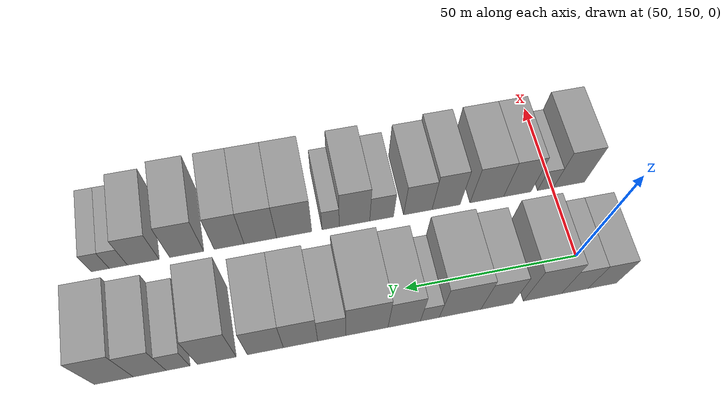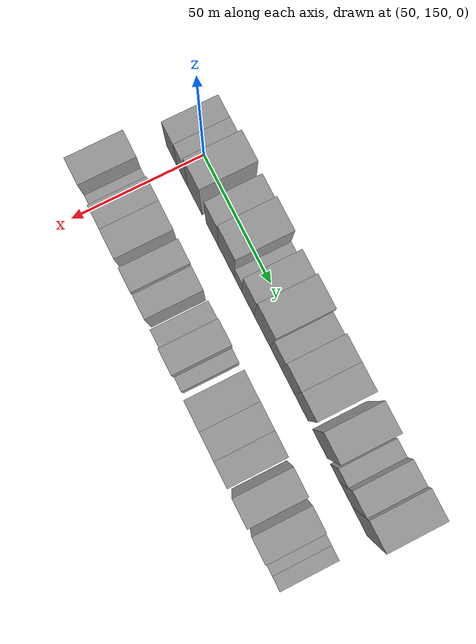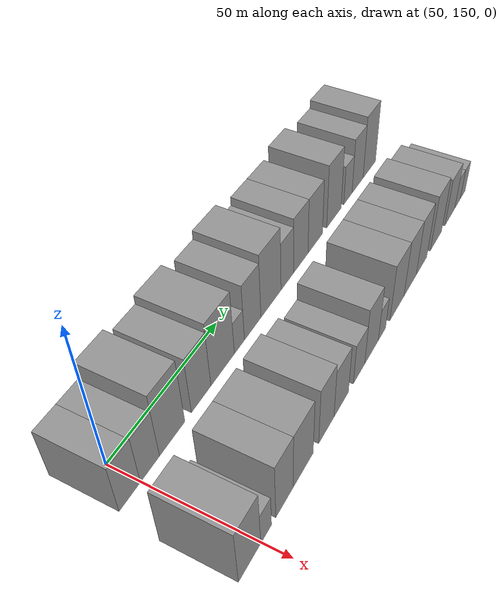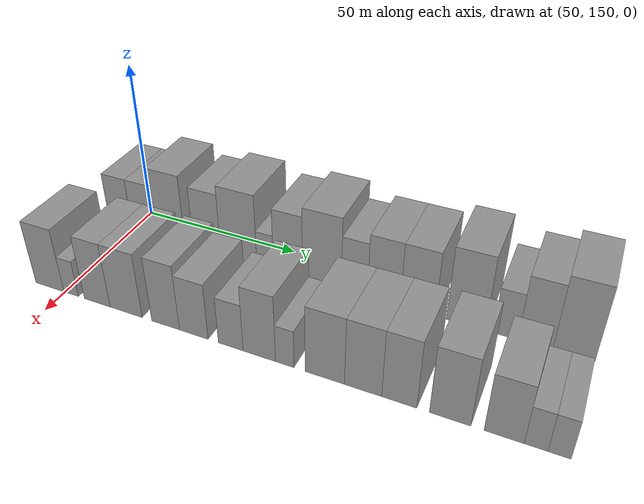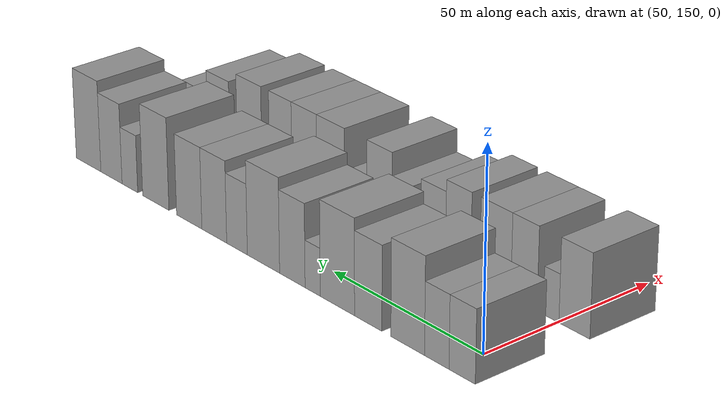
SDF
<sdf version="1.6">
 <world name="default">
  <model name="building_46">
   <static>1</static>
   <pose>50.0000 145.7142 0 0.000000 0.000000 0.000000</pose>
   <link name="link">
    <pose>0 0 9.00 0 0 0</pose>
    <collision name="collision"><geometry><box><size>20.0000 8.2881 18.0000</size></box></geometry></collision>
    <visual name="visual">
     <cast_shadows>0</cast_shadows>
     <geometry><box><size>20.0000 8.2881 18.0000</size></box></geometry>
     <material>
      <script>
       <uri>model://grey_wall/materials/scripts</uri>
       <uri>model://grey_wall/materials/textures</uri>
       <name>vrc/grey_wall</name>
      </script>
     </material>
    </visual>
   </link>
  </model>
  <model name="building_47">
   <static>1</static>
   <pose>50.0000 153.7815 0 0.000000 0.000000 0.000000</pose>
   <link name="link">
    <pose>0 0 9.00 0 0 0</pose>
    <collision name="collision"><geometry><box><size>20.0000 7.8466 18.0000</size></box></geometry></collision>
    <visual name="visual">
     <cast_shadows>0</cast_shadows>
     <geometry><box><size>20.0000 7.8466 18.0000</size></box></geometry>
     <material>
      <script>
       <uri>model://grey_wall/materials/scripts</uri>
       <uri>model://grey_wall/materials/textures</uri>
       <name>vrc/grey_wall</name>
      </script>
     </material>
    </visual>
   </link>
  </model>
  <model name="building_48">
   <static>1</static>
   <pose>50.0000 163.2209 0 0.000000 0.000000 0.000000</pose>
   <link name="link">
    <pose>0 0 12.00 0 0 0</pose>
    <collision name="collision"><geometry><box><size>20.0000 11.0322 24.0000</size></box></geometry></collision>
    <visual name="visual">
     <cast_shadows>0</cast_shadows>
     <geometry><box><size>20.0000 11.0322 24.0000</size></box></geometry>
     <material>
      <script>
       <uri>model://grey_wall/materials/scripts</uri>
       <uri>model://grey_wall/materials/textures</uri>
       <name>vrc/grey_wall</name>
      </script>
     </material>
    </visual>
   </link>
  </model>
  <model name="building_49">
   <static>1</static>
   <pose>50.0000 176.3521 0 0.000000 0.000000 0.000000</pose>
   <link name="link">
    <pose>0 0 10.50 0 0 0</pose>
    <collision name="collision"><geometry><box><size>20.0000 9.2301 21.0000</size></box></geometry></collision>
    <visual name="visual">
     <cast_shadows>0</cast_shadows>
     <geometry><box><size>20.0000 9.2301 21.0000</size></box></geometry>
     <material>
      <script>
       <uri>model://grey_wall/materials/scripts</uri>
       <uri>model://grey_wall/materials/textures</uri>
       <name>vrc/grey_wall</name>
      </script>
     </material>
    </visual>
   </link>
  </model>
  <model name="building_50">
   <static>1</static>
   <pose>50.0000 186.8899 0 0.000000 0.000000 0.000000</pose>
   <link name="link">
    <pose>0 0 12.00 0 0 0</pose>
    <collision name="collision"><geometry><box><size>20.0000 11.8455 24.0000</size></box></geometry></collision>
    <visual name="visual">
     <cast_shadows>0</cast_shadows>
     <geometry><box><size>20.0000 11.8455 24.0000</size></box></geometry>
     <material>
      <script>
       <uri>model://grey_wall/materials/scripts</uri>
       <uri>model://grey_wall/materials/textures</uri>
       <name>vrc/grey_wall</name>
      </script>
     </material>
    </visual>
   </link>
  </model>
  <model name="building_51">
   <static>1</static>
   <pose>50.0000 195.4780 0 0.000000 0.000000 0.000000</pose>
   <link name="link">
    <pose>0 0 6.00 0 0 0</pose>
    <collision name="collision"><geometry><box><size>20.0000 5.3307 12.0000</size></box></geometry></collision>
    <visual name="visual">
     <cast_shadows>0</cast_shadows>
     <geometry><box><size>20.0000 5.3307 12.0000</size></box></geometry>
     <material>
      <script>
       <uri>model://grey_wall/materials/scripts</uri>
       <uri>model://grey_wall/materials/textures</uri>
       <name>vrc/grey_wall</name>
      </script>
     </material>
    </visual>
   </link>
  </model>
  <model name="building_52">
   <static>1</static>
   <pose>50.0000 202.6930 0 0.000000 0.000000 0.000000</pose>
   <link name="link">
    <pose>0 0 10.50 0 0 0</pose>
    <collision name="collision"><geometry><box><size>20.0000 9.0993 21.0000</size></box></geometry></collision>
    <visual name="visual">
     <cast_shadows>0</cast_shadows>
     <geometry><box><size>20.0000 9.0993 21.0000</size></box></geometry>
     <material>
      <script>
       <uri>model://grey_wall/materials/scripts</uri>
       <uri>model://grey_wall/materials/textures</uri>
       <name>vrc/grey_wall</name>
      </script>
     </material>
    </visual>
   </link>
  </model>
  <model name="building_53">
   <static>1</static>
   <pose>50.0000 213.1366 0 0.000000 0.000000 0.000000</pose>
   <link name="link">
    <pose>0 0 12.00 0 0 0</pose>
    <collision name="collision"><geometry><box><size>20.0000 11.7880 24.0000</size></box></geometry></collision>
    <visual name="visual">
     <cast_shadows>0</cast_shadows>
     <geometry><box><size>20.0000 11.7880 24.0000</size></box></geometry>
     <material>
      <script>
       <uri>model://grey_wall/materials/scripts</uri>
       <uri>model://grey_wall/materials/textures</uri>
       <name>vrc/grey_wall</name>
      </script>
     </material>
    </visual>
   </link>
  </model>
  <model name="building_54">
   <static>1</static>
   <pose>50.0000 222.8815 0 0.000000 0.000000 0.000000</pose>
   <link name="link">
    <pose>0 0 9.00 0 0 0</pose>
    <collision name="collision"><geometry><box><size>20.0000 7.7017 18.0000</size></box></geometry></collision>
    <visual name="visual">
     <cast_shadows>0</cast_shadows>
     <geometry><box><size>20.0000 7.7017 18.0000</size></box></geometry>
     <material>
      <script>
       <uri>model://grey_wall/materials/scripts</uri>
       <uri>model://grey_wall/materials/textures</uri>
       <name>vrc/grey_wall</name>
      </script>
     </material>
    </visual>
   </link>
  </model>
  <model name="building_55">
   <static>1</static>
   <pose>50.0000 231.4436 0 0.000000 0.000000 0.000000</pose>
   <link name="link">
    <pose>0 0 10.50 0 0 0</pose>
    <collision name="collision"><geometry><box><size>20.0000 9.4225 21.0000</size></box></geometry></collision>
    <visual name="visual">
     <cast_shadows>0</cast_shadows>
     <geometry><box><size>20.0000 9.4225 21.0000</size></box></geometry>
     <material>
      <script>
       <uri>model://grey_wall/materials/scripts</uri>
       <uri>model://grey_wall/materials/textures</uri>
       <name>vrc/grey_wall</name>
      </script>
     </material>
    </visual>
   </link>
  </model>
  <model name="building_56">
   <static>1</static>
   <pose>50.0000 241.0594 0 0.000000 0.000000 0.000000</pose>
   <link name="link">
    <pose>0 0 10.50 0 0 0</pose>
    <collision name="collision"><geometry><box><size>20.0000 9.8090 21.0000</size></box></geometry></collision>
    <visual name="visual">
     <cast_shadows>0</cast_shadows>
     <geometry><box><size>20.0000 9.8090 21.0000</size></box></geometry>
     <material>
      <script>
       <uri>model://grey_wall/materials/scripts</uri>
       <uri>model://grey_wall/materials/textures</uri>
       <name>vrc/grey_wall</name>
      </script>
     </material>
    </visual>
   </link>
  </model>
  <model name="building_57">
   <static>1</static>
   <pose>50.0000 254.1887 0 0.000000 0.000000 0.000000</pose>
   <link name="link">
    <pose>0 0 12.00 0 0 0</pose>
    <collision name="collision"><geometry><box><size>20.0000 10.4495 24.0000</size></box></geometry></collision>
    <visual name="visual">
     <cast_shadows>0</cast_shadows>
     <geometry><box><size>20.0000 10.4495 24.0000</size></box></geometry>
     <material>
      <script>
       <uri>model://grey_wall/materials/scripts</uri>
       <uri>model://grey_wall/materials/textures</uri>
       <name>vrc/grey_wall</name>
      </script>
     </material>
    </visual>
   </link>
  </model>
  <model name="building_58">
   <static>1</static>
   <pose>50.0000 264.5880 0 0.000000 0.000000 0.000000</pose>
   <link name="link">
    <pose>0 0 7.50 0 0 0</pose>
    <collision name="collision"><geometry><box><size>20.0000 6.3491 15.0000</size></box></geometry></collision>
    <visual name="visual">
     <cast_shadows>0</cast_shadows>
     <geometry><box><size>20.0000 6.3491 15.0000</size></box></geometry>
     <material>
      <script>
       <uri>model://grey_wall/materials/scripts</uri>
       <uri>model://grey_wall/materials/textures</uri>
       <name>vrc/grey_wall</name>
      </script>
     </material>
    </visual>
   </link>
  </model>
  <model name="building_59">
   <static>1</static>
   <pose>50.0000 272.1322 0 0.000000 0.000000 0.000000</pose>
   <link name="link">
    <pose>0 0 10.50 0 0 0</pose>
    <collision name="collision"><geometry><box><size>20.0000 8.7393 21.0000</size></box></geometry></collision>
    <visual name="visual">
     <cast_shadows>0</cast_shadows>
     <geometry><box><size>20.0000 8.7393 21.0000</size></box></geometry>
     <material>
      <script>
       <uri>model://grey_wall/materials/scripts</uri>
       <uri>model://grey_wall/materials/textures</uri>
       <name>vrc/grey_wall</name>
      </script>
     </material>
    </visual>
   </link>
  </model>
  <model name="building_60">
   <static>1</static>
   <pose>50.0000 281.6452 0 0.000000 0.000000 0.000000</pose>
   <link name="link">
    <pose>0 0 12.00 0 0 0</pose>
    <collision name="collision"><geometry><box><size>20.0000 10.2866 24.0000</size></box></geometry></collision>
    <visual name="visual">
     <cast_shadows>0</cast_shadows>
     <geometry><box><size>20.0000 10.2866 24.0000</size></box></geometry>
     <material>
      <script>
       <uri>model://grey_wall/materials/scripts</uri>
       <uri>model://grey_wall/materials/textures</uri>
       <name>vrc/grey_wall</name>
      </script>
     </material>
    </visual>
   </link>
  </model>
  <model name="building_107">
   <static>1</static>
   <pose>82.0000 144.8367 0 0.000000 0.000000 0.000000</pose>
   <link name="link">
    <pose>0 0 10.50 0 0 0</pose>
    <collision name="collision"><geometry><box><size>20.0000 9.6892 21.0000</size></box></geometry></collision>
    <visual name="visual">
     <cast_shadows>0</cast_shadows>
     <geometry><box><size>20.0000 9.6892 21.0000</size></box></geometry>
     <material>
      <script>
       <uri>model://grey_wall/materials/scripts</uri>
       <uri>model://grey_wall/materials/textures</uri>
       <name>vrc/grey_wall</name>
      </script>
     </material>
    </visual>
   </link>
  </model>
  <model name="building_108">
   <static>1</static>
   <pose>82.0000 152.1466 0 0.000000 0.000000 0.000000</pose>
   <link name="link">
    <pose>0 0 6.00 0 0 0</pose>
    <collision name="collision"><geometry><box><size>20.0000 4.9305 12.0000</size></box></geometry></collision>
    <visual name="visual">
     <cast_shadows>0</cast_shadows>
     <geometry><box><size>20.0000 4.9305 12.0000</size></box></geometry>
     <material>
      <script>
       <uri>model://grey_wall/materials/scripts</uri>
       <uri>model://grey_wall/materials/textures</uri>
       <name>vrc/grey_wall</name>
      </script>
     </material>
    </visual>
   </link>
  </model>
  <model name="building_109">
   <static>1</static>
   <pose>82.0000 160.8517 0 0.000000 0.000000 0.000000</pose>
   <link name="link">
    <pose>0 0 10.50 0 0 0</pose>
    <collision name="collision"><geometry><box><size>20.0000 8.4798 21.0000</size></box></geometry></collision>
    <visual name="visual">
     <cast_shadows>0</cast_shadows>
     <geometry><box><size>20.0000 8.4798 21.0000</size></box></geometry>
     <material>
      <script>
       <uri>model://grey_wall/materials/scripts</uri>
       <uri>model://grey_wall/materials/textures</uri>
       <name>vrc/grey_wall</name>
      </script>
     </material>
    </visual>
   </link>
  </model>
  <model name="building_110">
   <static>1</static>
   <pose>82.0000 170.2266 0 0.000000 0.000000 0.000000</pose>
   <link name="link">
    <pose>0 0 10.50 0 0 0</pose>
    <collision name="collision"><geometry><box><size>20.0000 10.2701 21.0000</size></box></geometry></collision>
    <visual name="visual">
     <cast_shadows>0</cast_shadows>
     <geometry><box><size>20.0000 10.2701 21.0000</size></box></geometry>
     <material>
      <script>
       <uri>model://grey_wall/materials/scripts</uri>
       <uri>model://grey_wall/materials/textures</uri>
       <name>vrc/grey_wall</name>
      </script>
     </material>
    </visual>
   </link>
  </model>
  <model name="building_111">
   <static>1</static>
   <pose>82.0000 182.6256 0 0.000000 0.000000 0.000000</pose>
   <link name="link">
    <pose>0 0 10.50 0 0 0</pose>
    <collision name="collision"><geometry><box><size>20.0000 8.5278 21.0000</size></box></geometry></collision>
    <visual name="visual">
     <cast_shadows>0</cast_shadows>
     <geometry><box><size>20.0000 8.5278 21.0000</size></box></geometry>
     <material>
      <script>
       <uri>model://grey_wall/materials/scripts</uri>
       <uri>model://grey_wall/materials/textures</uri>
       <name>vrc/grey_wall</name>
      </script>
     </material>
    </visual>
   </link>
  </model>
  <model name="building_112">
   <static>1</static>
   <pose>82.0000 191.1655 0 0.000000 0.000000 0.000000</pose>
   <link name="link">
    <pose>0 0 9.00 0 0 0</pose>
    <collision name="collision"><geometry><box><size>20.0000 8.5521 18.0000</size></box></geometry></collision>
    <visual name="visual">
     <cast_shadows>0</cast_shadows>
     <geometry><box><size>20.0000 8.5521 18.0000</size></box></geometry>
     <material>
      <script>
       <uri>model://grey_wall/materials/scripts</uri>
       <uri>model://grey_wall/materials/textures</uri>
       <name>vrc/grey_wall</name>
      </script>
     </material>
    </visual>
   </link>
  </model>
  <model name="building_113">
   <static>1</static>
   <pose>82.0000 202.0079 0 0.000000 0.000000 0.000000</pose>
   <link name="link">
    <pose>0 0 7.50 0 0 0</pose>
    <collision name="collision"><geometry><box><size>20.0000 7.1326 15.0000</size></box></geometry></collision>
    <visual name="visual">
     <cast_shadows>0</cast_shadows>
     <geometry><box><size>20.0000 7.1326 15.0000</size></box></geometry>
     <material>
      <script>
       <uri>model://grey_wall/materials/scripts</uri>
       <uri>model://grey_wall/materials/textures</uri>
       <name>vrc/grey_wall</name>
      </script>
     </material>
    </visual>
   </link>
  </model>
  <model name="building_114">
   <static>1</static>
   <pose>82.0000 210.0907 0 0.000000 0.000000 0.000000</pose>
   <link name="link">
    <pose>0 0 10.50 0 0 0</pose>
    <collision name="collision"><geometry><box><size>20.0000 9.0331 21.0000</size></box></geometry></collision>
    <visual name="visual">
     <cast_shadows>0</cast_shadows>
     <geometry><box><size>20.0000 9.0331 21.0000</size></box></geometry>
     <material>
      <script>
       <uri>model://grey_wall/materials/scripts</uri>
       <uri>model://grey_wall/materials/textures</uri>
       <name>vrc/grey_wall</name>
      </script>
     </material>
    </visual>
   </link>
  </model>
  <model name="building_115">
   <static>1</static>
   <pose>82.0000 217.1398 0 0.000000 0.000000 0.000000</pose>
   <link name="link">
    <pose>0 0 6.00 0 0 0</pose>
    <collision name="collision"><geometry><box><size>20.0000 5.0650 12.0000</size></box></geometry></collision>
    <visual name="visual">
     <cast_shadows>0</cast_shadows>
     <geometry><box><size>20.0000 5.0650 12.0000</size></box></geometry>
     <material>
      <script>
       <uri>model://grey_wall/materials/scripts</uri>
       <uri>model://grey_wall/materials/textures</uri>
       <name>vrc/grey_wall</name>
      </script>
     </material>
    </visual>
   </link>
  </model>
  <model name="building_116">
   <static>1</static>
   <pose>82.0000 227.8277 0 0.000000 0.000000 0.000000</pose>
   <link name="link">
    <pose>0 0 10.50 0 0 0</pose>
    <collision name="collision"><geometry><box><size>20.0000 10.3108 21.0000</size></box></geometry></collision>
    <visual name="visual">
     <cast_shadows>0</cast_shadows>
     <geometry><box><size>20.0000 10.3108 21.0000</size></box></geometry>
     <material>
      <script>
       <uri>model://grey_wall/materials/scripts</uri>
       <uri>model://grey_wall/materials/textures</uri>
       <name>vrc/grey_wall</name>
      </script>
     </material>
    </visual>
   </link>
  </model>
  <model name="building_117">
   <static>1</static>
   <pose>82.0000 237.7114 0 0.000000 0.000000 0.000000</pose>
   <link name="link">
    <pose>0 0 10.50 0 0 0</pose>
    <collision name="collision"><geometry><box><size>20.0000 9.4568 21.0000</size></box></geometry></collision>
    <visual name="visual">
     <cast_shadows>0</cast_shadows>
     <geometry><box><size>20.0000 9.4568 21.0000</size></box></geometry>
     <material>
      <script>
       <uri>model://grey_wall/materials/scripts</uri>
       <uri>model://grey_wall/materials/textures</uri>
       <name>vrc/grey_wall</name>
      </script>
     </material>
    </visual>
   </link>
  </model>
  <model name="building_118">
   <static>1</static>
   <pose>82.0000 246.7508 0 0.000000 0.000000 0.000000</pose>
   <link name="link">
    <pose>0 0 10.50 0 0 0</pose>
    <collision name="collision"><geometry><box><size>20.0000 8.6220 21.0000</size></box></geometry></collision>
    <visual name="visual">
     <cast_shadows>0</cast_shadows>
     <geometry><box><size>20.0000 8.6220 21.0000</size></box></geometry>
     <material>
      <script>
       <uri>model://grey_wall/materials/scripts</uri>
       <uri>model://grey_wall/materials/textures</uri>
       <name>vrc/grey_wall</name>
      </script>
     </material>
    </visual>
   </link>
  </model>
  <model name="building_119">
   <static>1</static>
   <pose>82.0000 258.9261 0 0.000000 0.000000 0.000000</pose>
   <link name="link">
    <pose>0 0 10.50 0 0 0</pose>
    <collision name="collision"><geometry><box><size>20.0000 9.7286 21.0000</size></box></geometry></collision>
    <visual name="visual">
     <cast_shadows>0</cast_shadows>
     <geometry><box><size>20.0000 9.7286 21.0000</size></box></geometry>
     <material>
      <script>
       <uri>model://grey_wall/materials/scripts</uri>
       <uri>model://grey_wall/materials/textures</uri>
       <name>vrc/grey_wall</name>
      </script>
     </material>
    </visual>
   </link>
  </model>
  <model name="building_120">
   <static>1</static>
   <pose>82.0000 271.2804 0 0.000000 0.000000 0.000000</pose>
   <link name="link">
    <pose>0 0 9.00 0 0 0</pose>
    <collision name="collision"><geometry><box><size>20.0000 8.9799 18.0000</size></box></geometry></collision>
    <visual name="visual">
     <cast_shadows>0</cast_shadows>
     <geometry><box><size>20.0000 8.9799 18.0000</size></box></geometry>
     <material>
      <script>
       <uri>model://grey_wall/materials/scripts</uri>
       <uri>model://grey_wall/materials/textures</uri>
       <name>vrc/grey_wall</name>
      </script>
     </material>
    </visual>
   </link>
  </model>
  <model name="building_121">
   <static>1</static>
   <pose>82.0000 278.3349 0 0.000000 0.000000 0.000000</pose>
   <link name="link">
    <pose>0 0 6.00 0 0 0</pose>
    <collision name="collision"><geometry><box><size>20.0000 5.1290 12.0000</size></box></geometry></collision>
    <visual name="visual">
     <cast_shadows>0</cast_shadows>
     <geometry><box><size>20.0000 5.1290 12.0000</size></box></geometry>
     <material>
      <script>
       <uri>model://grey_wall/materials/scripts</uri>
       <uri>model://grey_wall/materials/textures</uri>
       <name>vrc/grey_wall</name>
      </script>
     </material>
    </visual>
   </link>
  </model>
  <model name="building_122">
   <static>1</static>
   <pose>82.0000 283.3926 0 0.000000 0.000000 0.000000</pose>
   <link name="link">
    <pose>0 0 6.00 0 0 0</pose>
    <collision name="collision"><geometry><box><size>20.0000 4.9864 12.0000</size></box></geometry></collision>
    <visual name="visual">
     <cast_shadows>0</cast_shadows>
     <geometry><box><size>20.0000 4.9864 12.0000</size></box></geometry>
     <material>
      <script>
       <uri>model://grey_wall/materials/scripts</uri>
       <uri>model://grey_wall/materials/textures</uri>
       <name>vrc/grey_wall</name>
      </script>
     </material>
    </visual>
   </link>
  </model>
 </world>
</sdf>
